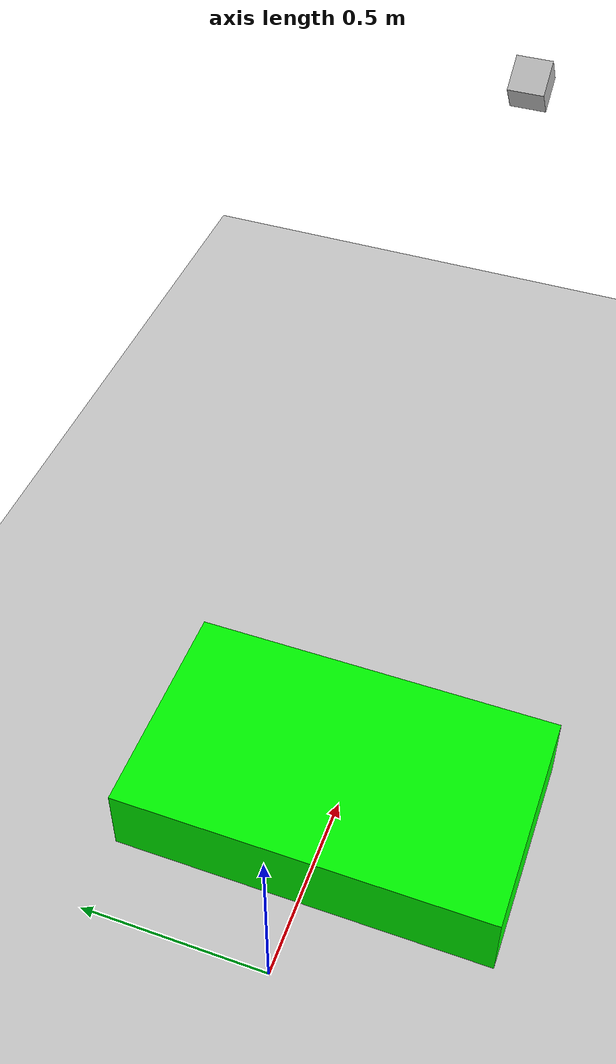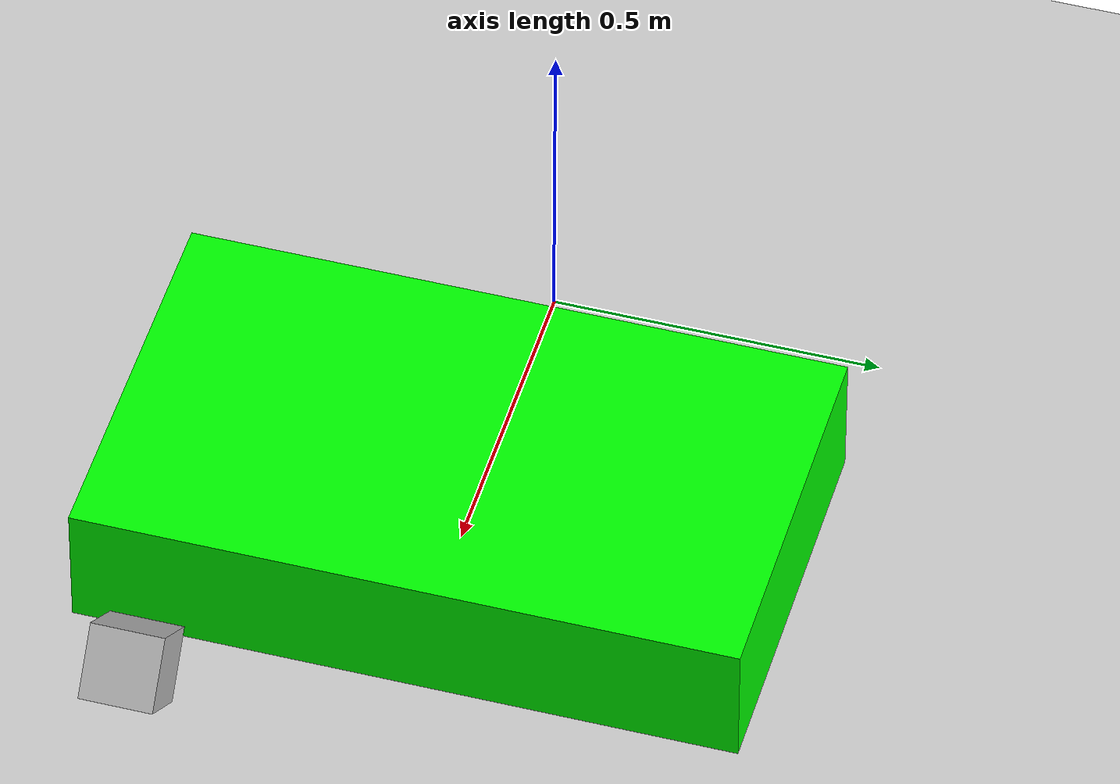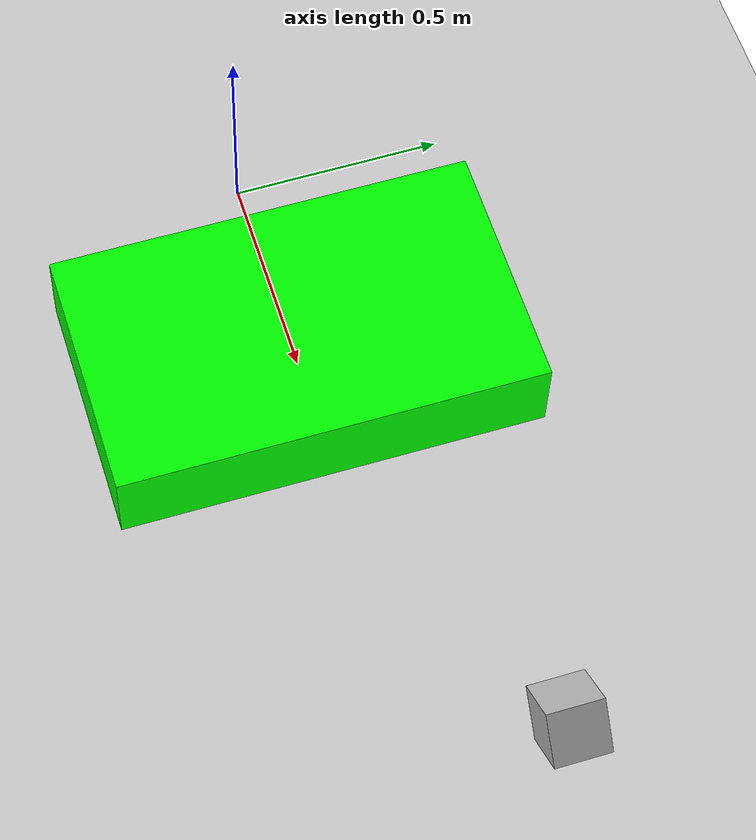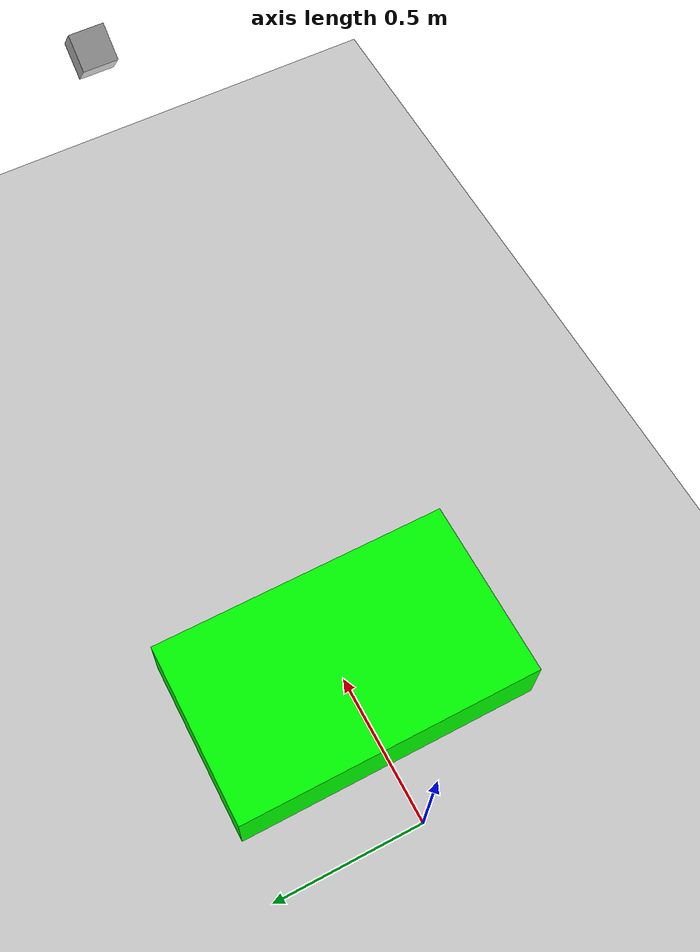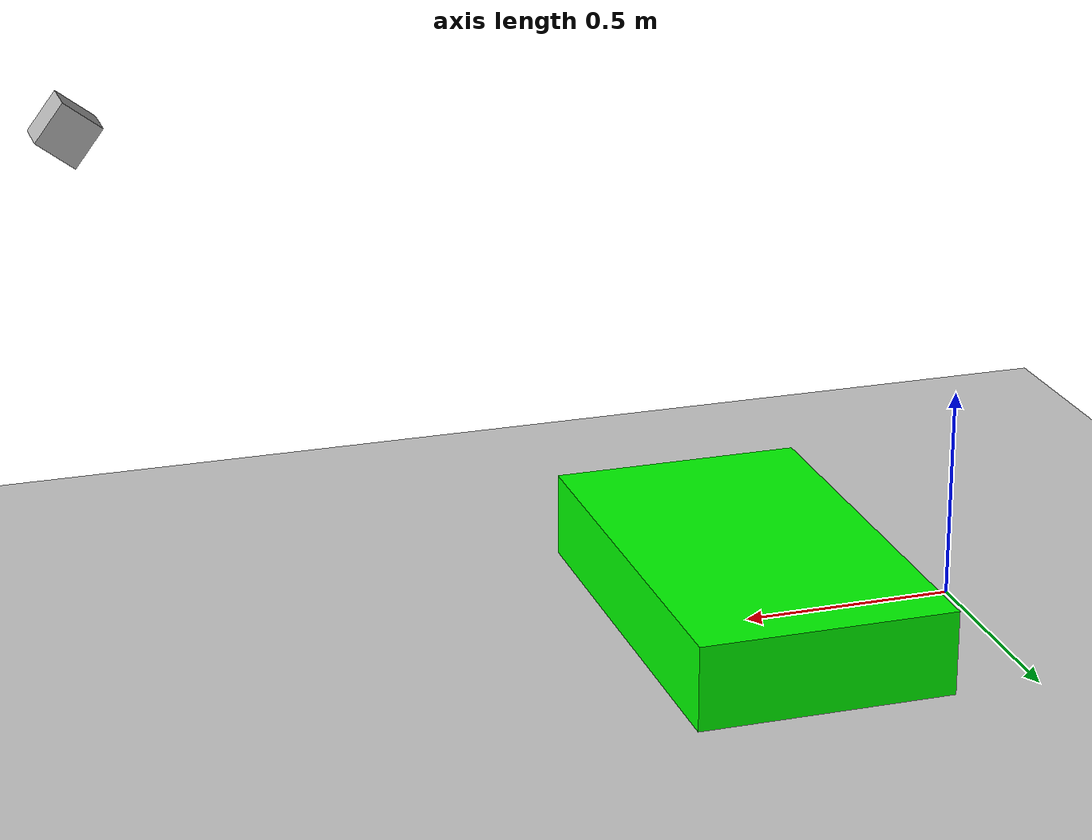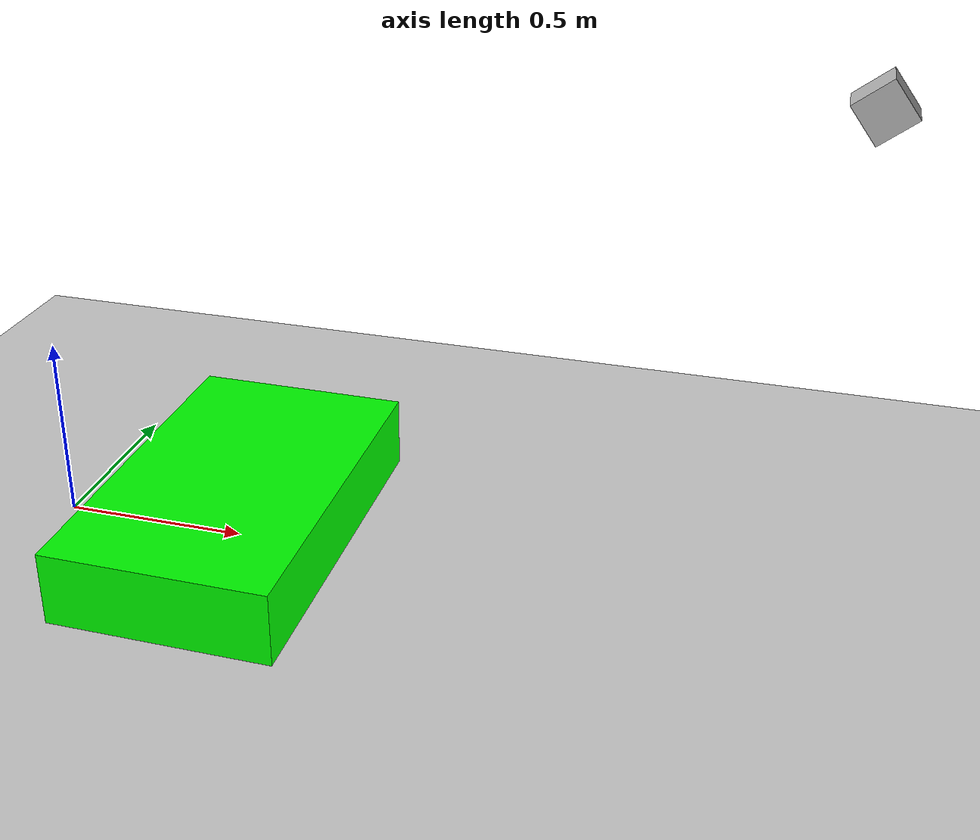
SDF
<?xml version="1.0" ?>
<sdf version="1.6">
  <world name="obstacle_world">

    <physics name="1ms" type="ode">
      <max_step_size>0.004</max_step_size>
      <real_time_update_rate>250</real_time_update_rate>
    </physics>

    <plugin filename="libignition-gazebo-physics-system.so"
            name="ignition::gazebo::systems::Physics"/>
    <plugin filename="libignition-gazebo-user-commands-system.so"
            name="ignition::gazebo::systems::UserCommands"/>
    <plugin filename="libignition-gazebo-scene-broadcaster-system.so"
            name="ignition::gazebo::systems::SceneBroadcaster"/>

    <light type="directional" name="sun">
      <cast_shadows>true</cast_shadows>
      <pose>0 0 10 0 0 0</pose>
      <diffuse>0.8 0.8 0.8 1</diffuse>
      <specular>0.2 0.2 0.2 1</specular>
      <direction>-0.5 0.1 -0.9</direction>
    </light>

    <model name="ground_plane">
      <static>true</static>
      <link name="link">
        <collision name="collision">
          <geometry>
            <plane>
              <normal>0 0 1</normal>
              <size>100 100</size>
            </plane>
          </geometry>
        </collision>
        <visual name="visual">
          <geometry>
            <plane>
              <normal>0 0 1</normal>
              <size>100 100</size>
            </plane>
          </geometry>
          <material>
            <ambient>0.8 0.8 0.8 1</ambient>
            <diffuse>0.8 0.8 0.8 1</diffuse>
          </material>
        </visual>
      </link>
    </model>

    <model name="green_table">
      <static>true</static>
      <pose>0.5 0 0.1 0 0 0</pose>
      <link name="link">
        <collision name="collision">
          <geometry>
            <box>
              <size>0.6 1.0 0.2</size> </box>
          </geometry>
        </collision>
        <visual name="visual">
          <geometry>
            <box>
              <size>0.6 1.0 0.2</size>
            </box>
          </geometry>
          <material>
            <ambient>0.0 1.0 0.0 1</ambient>
            <diffuse>0.0 1.0 0.0 1</diffuse>
          </material>
        </visual>
      </link>
    </model>

    <model name="static_camera">
      <static>true</static>
      <pose>2.0 0 1.3 0 0.65 3.14159</pose>
      <link name="link">
        <visual name="visual">
          <geometry><box><size>0.1 0.1 0.1</size></box></geometry>
        </visual>

        <sensor name="color_camera" type="camera">
          <update_rate>10</update_rate>
          <topic>static_camera/image</topic>
          <camera>
            <horizontal_fov>1.05</horizontal_fov>
            <image>
              <width>640</width>
              <height>480</height>
              <format>R8G8B8</format>
            </image>
            <clip><near>0.1</near><far>5.0</far></clip>
          </camera>
        </sensor>

        <sensor name="depth_camera" type="depth_camera">
          <update_rate>10</update_rate>
          <topic>static_camera/depth_image</topic>
          <camera>
            <horizontal_fov>1.05</horizontal_fov>
            <image>
              <width>640</width>
              <height>480</height>
              <format>R_FLOAT32</format>
            </image>
            <clip><near>0.1</near><far>5.0</far></clip>
          </camera>
        </sensor>
      </link>
    </model>

  </world>
</sdf>
